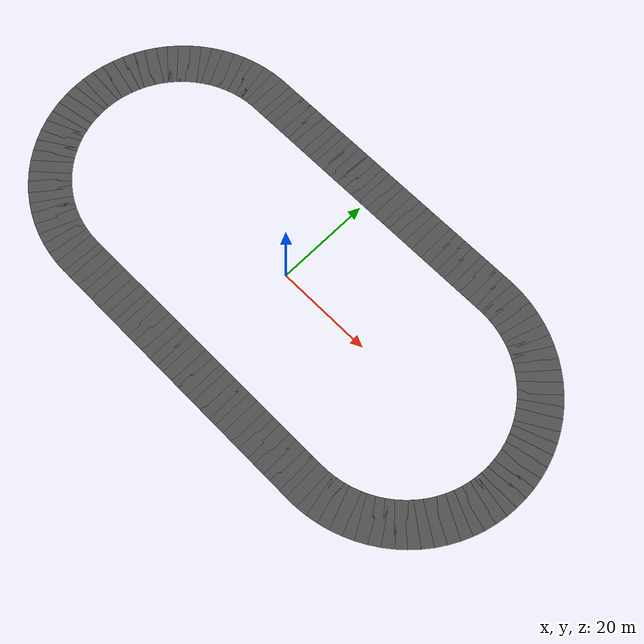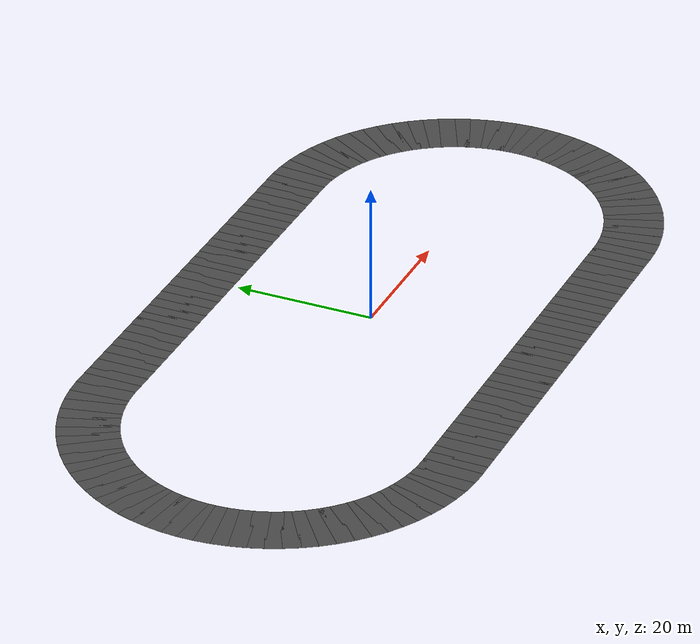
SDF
<sdf version="1.6">
 <world name="otoban">
  <model name="yol_yuzeyi">
   <static>1</static>
   <link name="link">
    <visual name="v0">
     <pose>-29.0033 -25.0000 0.0050 0 0 0.00000</pose>
     <cast_shadows>false</cast_shadows>
     <geometry><box><size>2.4022 8.5000 0.0100</size></box></geometry>
     <material>
      <script>
       <uri>model://asphalt_plane/materials/scripts</uri>
       <uri>model://asphalt_plane/materials/textures</uri>
       <name>vrc/asphalt</name>
      </script>
     </material>
    </visual>
    <visual name="v1">
     <pose>-27.0099 -25.0000 0.0050 0 0 0.00000</pose>
     <cast_shadows>false</cast_shadows>
     <geometry><box><size>2.4022 8.5000 0.0100</size></box></geometry>
     <material>
      <script>
       <uri>model://asphalt_plane/materials/scripts</uri>
       <uri>model://asphalt_plane/materials/textures</uri>
       <name>vrc/asphalt</name>
      </script>
     </material>
    </visual>
    <visual name="v2">
     <pose>-25.0166 -25.0000 0.0050 0 0 0.00000</pose>
     <cast_shadows>false</cast_shadows>
     <geometry><box><size>2.4022 8.5000 0.0100</size></box></geometry>
     <material>
      <script>
       <uri>model://asphalt_plane/materials/scripts</uri>
       <uri>model://asphalt_plane/materials/textures</uri>
       <name>vrc/asphalt</name>
      </script>
     </material>
    </visual>
    <visual name="v3">
     <pose>-23.0232 -25.0000 0.0050 0 0 0.00000</pose>
     <cast_shadows>false</cast_shadows>
     <geometry><box><size>2.4022 8.5000 0.0100</size></box></geometry>
     <material>
      <script>
       <uri>model://asphalt_plane/materials/scripts</uri>
       <uri>model://asphalt_plane/materials/textures</uri>
       <name>vrc/asphalt</name>
      </script>
     </material>
    </visual>
    <visual name="v4">
     <pose>-21.0298 -25.0000 0.0050 0 0 0.00000</pose>
     <cast_shadows>false</cast_shadows>
     <geometry><box><size>2.4022 8.5000 0.0100</size></box></geometry>
     <material>
      <script>
       <uri>model://asphalt_plane/materials/scripts</uri>
       <uri>model://asphalt_plane/materials/textures</uri>
       <name>vrc/asphalt</name>
      </script>
     </material>
    </visual>
    <visual name="v5">
     <pose>-19.0364 -25.0000 0.0050 0 0 0.00000</pose>
     <cast_shadows>false</cast_shadows>
     <geometry><box><size>2.4022 8.5000 0.0100</size></box></geometry>
     <material>
      <script>
       <uri>model://asphalt_plane/materials/scripts</uri>
       <uri>model://asphalt_plane/materials/textures</uri>
       <name>vrc/asphalt</name>
      </script>
     </material>
    </visual>
    <visual name="v6">
     <pose>-17.0430 -25.0000 0.0050 0 0 0.00000</pose>
     <cast_shadows>false</cast_shadows>
     <geometry><box><size>2.4022 8.5000 0.0100</size></box></geometry>
     <material>
      <script>
       <uri>model://asphalt_plane/materials/scripts</uri>
       <uri>model://asphalt_plane/materials/textures</uri>
       <name>vrc/asphalt</name>
      </script>
     </material>
    </visual>
    <visual name="v7">
     <pose>-15.0497 -25.0000 0.0050 0 0 0.00000</pose>
     <cast_shadows>false</cast_shadows>
     <geometry><box><size>2.4022 8.5000 0.0100</size></box></geometry>
     <material>
      <script>
       <uri>model://asphalt_plane/materials/scripts</uri>
       <uri>model://asphalt_plane/materials/textures</uri>
       <name>vrc/asphalt</name>
      </script>
     </material>
    </visual>
    <visual name="v8">
     <pose>-13.0563 -25.0000 0.0050 0 0 0.00000</pose>
     <cast_shadows>false</cast_shadows>
     <geometry><box><size>2.4022 8.5000 0.0100</size></box></geometry>
     <material>
      <script>
       <uri>model://asphalt_plane/materials/scripts</uri>
       <uri>model://asphalt_plane/materials/textures</uri>
       <name>vrc/asphalt</name>
      </script>
     </material>
    </visual>
    <visual name="v9">
     <pose>-11.0629 -25.0000 0.0050 0 0 0.00000</pose>
     <cast_shadows>false</cast_shadows>
     <geometry><box><size>2.4022 8.5000 0.0100</size></box></geometry>
     <material>
      <script>
       <uri>model://asphalt_plane/materials/scripts</uri>
       <uri>model://asphalt_plane/materials/textures</uri>
       <name>vrc/asphalt</name>
      </script>
     </material>
    </visual>
    <visual name="v10">
     <pose>-9.0695 -25.0000 0.0050 0 0 0.00000</pose>
     <cast_shadows>false</cast_shadows>
     <geometry><box><size>2.4022 8.5000 0.0100</size></box></geometry>
     <material>
      <script>
       <uri>model://asphalt_plane/materials/scripts</uri>
       <uri>model://asphalt_plane/materials/textures</uri>
       <name>vrc/asphalt</name>
      </script>
     </material>
    </visual>
    <visual name="v11">
     <pose>-7.0761 -25.0000 0.0050 0 0 0.00000</pose>
     <cast_shadows>false</cast_shadows>
     <geometry><box><size>2.4022 8.5000 0.0100</size></box></geometry>
     <material>
      <script>
       <uri>model://asphalt_plane/materials/scripts</uri>
       <uri>model://asphalt_plane/materials/textures</uri>
       <name>vrc/asphalt</name>
      </script>
     </material>
    </visual>
    <visual name="v12">
     <pose>-5.0828 -25.0000 0.0050 0 0 0.00000</pose>
     <cast_shadows>false</cast_shadows>
     <geometry><box><size>2.4022 8.5000 0.0100</size></box></geometry>
     <material>
      <script>
       <uri>model://asphalt_plane/materials/scripts</uri>
       <uri>model://asphalt_plane/materials/textures</uri>
       <name>vrc/asphalt</name>
      </script>
     </material>
    </visual>
    <visual name="v13">
     <pose>-3.0894 -25.0000 0.0050 0 0 0.00000</pose>
     <cast_shadows>false</cast_shadows>
     <geometry><box><size>2.4022 8.5000 0.0100</size></box></geometry>
     <material>
      <script>
       <uri>model://asphalt_plane/materials/scripts</uri>
       <uri>model://asphalt_plane/materials/textures</uri>
       <name>vrc/asphalt</name>
      </script>
     </material>
    </visual>
    <visual name="v14">
     <pose>-1.0960 -25.0000 0.0050 0 0 0.00000</pose>
     <cast_shadows>false</cast_shadows>
     <geometry><box><size>2.4022 8.5000 0.0100</size></box></geometry>
     <material>
      <script>
       <uri>model://asphalt_plane/materials/scripts</uri>
       <uri>model://asphalt_plane/materials/textures</uri>
       <name>vrc/asphalt</name>
      </script>
     </material>
    </visual>
    <visual name="v15">
     <pose>0.8974 -25.0000 0.0050 0 0 0.00000</pose>
     <cast_shadows>false</cast_shadows>
     <geometry><box><size>2.4022 8.5000 0.0100</size></box></geometry>
     <material>
      <script>
       <uri>model://asphalt_plane/materials/scripts</uri>
       <uri>model://asphalt_plane/materials/textures</uri>
       <name>vrc/asphalt</name>
      </script>
     </material>
    </visual>
    <visual name="v16">
     <pose>2.8907 -25.0000 0.0050 0 0 0.00000</pose>
     <cast_shadows>false</cast_shadows>
     <geometry><box><size>2.4022 8.5000 0.0100</size></box></geometry>
     <material>
      <script>
       <uri>model://asphalt_plane/materials/scripts</uri>
       <uri>model://asphalt_plane/materials/textures</uri>
       <name>vrc/asphalt</name>
      </script>
     </material>
    </visual>
    <visual name="v17">
     <pose>4.8841 -25.0000 0.0050 0 0 0.00000</pose>
     <cast_shadows>false</cast_shadows>
     <geometry><box><size>2.4022 8.5000 0.0100</size></box></geometry>
     <material>
      <script>
       <uri>model://asphalt_plane/materials/scripts</uri>
       <uri>model://asphalt_plane/materials/textures</uri>
       <name>vrc/asphalt</name>
      </script>
     </material>
    </visual>
    <visual name="v18">
     <pose>6.8775 -25.0000 0.0050 0 0 0.00000</pose>
     <cast_shadows>false</cast_shadows>
     <geometry><box><size>2.4022 8.5000 0.0100</size></box></geometry>
     <material>
      <script>
       <uri>model://asphalt_plane/materials/scripts</uri>
       <uri>model://asphalt_plane/materials/textures</uri>
       <name>vrc/asphalt</name>
      </script>
     </material>
    </visual>
    <visual name="v19">
     <pose>8.8709 -25.0000 0.0050 0 0 0.00000</pose>
     <cast_shadows>false</cast_shadows>
     <geometry><box><size>2.4022 8.5000 0.0100</size></box></geometry>
     <material>
      <script>
       <uri>model://asphalt_plane/materials/scripts</uri>
       <uri>model://asphalt_plane/materials/textures</uri>
       <name>vrc/asphalt</name>
      </script>
     </material>
    </visual>
    <visual name="v20">
     <pose>10.8643 -25.0000 0.0050 0 0 0.00000</pose>
     <cast_shadows>false</cast_shadows>
     <geometry><box><size>2.4022 8.5000 0.0100</size></box></geometry>
     <material>
      <script>
       <uri>model://asphalt_plane/materials/scripts</uri>
       <uri>model://asphalt_plane/materials/textures</uri>
       <name>vrc/asphalt</name>
      </script>
     </material>
    </visual>
    <visual name="v21">
     <pose>12.8576 -25.0000 0.0050 0 0 0.00000</pose>
     <cast_shadows>false</cast_shadows>
     <geometry><box><size>2.4022 8.5000 0.0100</size></box></geometry>
     <material>
      <script>
       <uri>model://asphalt_plane/materials/scripts</uri>
       <uri>model://asphalt_plane/materials/textures</uri>
       <name>vrc/asphalt</name>
      </script>
     </material>
    </visual>
    <visual name="v22">
     <pose>14.8510 -25.0000 0.0050 0 0 0.00000</pose>
     <cast_shadows>false</cast_shadows>
     <geometry><box><size>2.4022 8.5000 0.0100</size></box></geometry>
     <material>
      <script>
       <uri>model://asphalt_plane/materials/scripts</uri>
       <uri>model://asphalt_plane/materials/textures</uri>
       <name>vrc/asphalt</name>
      </script>
     </material>
    </visual>
    <visual name="v23">
     <pose>16.8444 -25.0000 0.0050 0 0 0.00000</pose>
     <cast_shadows>false</cast_shadows>
     <geometry><box><size>2.4022 8.5000 0.0100</size></box></geometry>
     <material>
      <script>
       <uri>model://asphalt_plane/materials/scripts</uri>
       <uri>model://asphalt_plane/materials/textures</uri>
       <name>vrc/asphalt</name>
      </script>
     </material>
    </visual>
    <visual name="v24">
     <pose>18.8378 -25.0000 0.0050 0 0 0.00000</pose>
     <cast_shadows>false</cast_shadows>
     <geometry><box><size>2.4022 8.5000 0.0100</size></box></geometry>
     <material>
      <script>
       <uri>model://asphalt_plane/materials/scripts</uri>
       <uri>model://asphalt_plane/materials/textures</uri>
       <name>vrc/asphalt</name>
      </script>
     </material>
    </visual>
    <visual name="v25">
     <pose>20.8312 -25.0000 0.0050 0 0 0.00000</pose>
     <cast_shadows>false</cast_shadows>
     <geometry><box><size>2.4022 8.5000 0.0100</size></box></geometry>
     <material>
      <script>
       <uri>model://asphalt_plane/materials/scripts</uri>
       <uri>model://asphalt_plane/materials/textures</uri>
       <name>vrc/asphalt</name>
      </script>
     </material>
    </visual>
    <visual name="v26">
     <pose>22.8245 -25.0000 0.0050 0 0 0.00000</pose>
     <cast_shadows>false</cast_shadows>
     <geometry><box><size>2.4022 8.5000 0.0100</size></box></geometry>
     <material>
      <script>
       <uri>model://asphalt_plane/materials/scripts</uri>
       <uri>model://asphalt_plane/materials/textures</uri>
       <name>vrc/asphalt</name>
      </script>
     </material>
    </visual>
    <visual name="v27">
     <pose>24.8179 -25.0000 0.0050 0 0 0.00000</pose>
     <cast_shadows>false</cast_shadows>
     <geometry><box><size>2.4022 8.5000 0.0100</size></box></geometry>
     <material>
      <script>
       <uri>model://asphalt_plane/materials/scripts</uri>
       <uri>model://asphalt_plane/materials/textures</uri>
       <name>vrc/asphalt</name>
      </script>
     </material>
    </visual>
    <visual name="v28">
     <pose>26.8113 -25.0000 0.0050 0 0 0.00000</pose>
     <cast_shadows>false</cast_shadows>
     <geometry><box><size>2.4022 8.5000 0.0100</size></box></geometry>
     <material>
      <script>
       <uri>model://asphalt_plane/materials/scripts</uri>
       <uri>model://asphalt_plane/materials/textures</uri>
       <name>vrc/asphalt</name>
      </script>
     </material>
    </visual>
    <visual name="v29">
     <pose>28.8047 -25.0000 0.0050 0 0 0.00000</pose>
     <cast_shadows>false</cast_shadows>
     <geometry><box><size>2.4022 8.5000 0.0100</size></box></geometry>
     <material>
      <script>
       <uri>model://asphalt_plane/materials/scripts</uri>
       <uri>model://asphalt_plane/materials/textures</uri>
       <name>vrc/asphalt</name>
      </script>
     </material>
    </visual>
    <visual name="v30">
     <pose>30.7979 -24.9873 0.0050 0 0 0.03192</pose>
     <cast_shadows>false</cast_shadows>
     <geometry><box><size>2.4022 8.5000 0.0100</size></box></geometry>
     <material>
      <script>
       <uri>model://asphalt_plane/materials/scripts</uri>
       <uri>model://asphalt_plane/materials/textures</uri>
       <name>vrc/asphalt</name>
      </script>
     </material>
    </visual>
    <visual name="v31">
     <pose>32.7856 -24.8443 0.0050 0 0 0.11166</pose>
     <cast_shadows>false</cast_shadows>
     <geometry><box><size>2.4022 8.5000 0.0100</size></box></geometry>
     <material>
      <script>
       <uri>model://asphalt_plane/materials/scripts</uri>
       <uri>model://asphalt_plane/materials/textures</uri>
       <name>vrc/asphalt</name>
      </script>
     </material>
    </visual>
    <visual name="v32">
     <pose>34.7556 -24.5435 0.0050 0 0 0.19139</pose>
     <cast_shadows>false</cast_shadows>
     <geometry><box><size>2.4022 8.5000 0.0100</size></box></geometry>
     <material>
      <script>
       <uri>model://asphalt_plane/materials/scripts</uri>
       <uri>model://asphalt_plane/materials/textures</uri>
       <name>vrc/asphalt</name>
      </script>
     </material>
    </visual>
    <visual name="v33">
     <pose>36.6954 -24.0867 0.0050 0 0 0.27113</pose>
     <cast_shadows>false</cast_shadows>
     <geometry><box><size>2.4022 8.5000 0.0100</size></box></geometry>
     <material>
      <script>
       <uri>model://asphalt_plane/materials/scripts</uri>
       <uri>model://asphalt_plane/materials/textures</uri>
       <name>vrc/asphalt</name>
      </script>
     </material>
    </visual>
    <visual name="v34">
     <pose>38.5927 -23.4769 0.0050 0 0 0.35086</pose>
     <cast_shadows>false</cast_shadows>
     <geometry><box><size>2.4022 8.5000 0.0100</size></box></geometry>
     <material>
      <script>
       <uri>model://asphalt_plane/materials/scripts</uri>
       <uri>model://asphalt_plane/materials/textures</uri>
       <name>vrc/asphalt</name>
      </script>
     </material>
    </visual>
    <visual name="v35">
     <pose>40.4354 -22.7179 0.0050 0 0 0.43060</pose>
     <cast_shadows>false</cast_shadows>
     <geometry><box><size>2.4022 8.5000 0.0100</size></box></geometry>
     <material>
      <script>
       <uri>model://asphalt_plane/materials/scripts</uri>
       <uri>model://asphalt_plane/materials/textures</uri>
       <name>vrc/asphalt</name>
      </script>
     </material>
    </visual>
    <visual name="v36">
     <pose>42.2117 -21.8145 0.0050 0 0 0.51033</pose>
     <cast_shadows>false</cast_shadows>
     <geometry><box><size>2.4022 8.5000 0.0100</size></box></geometry>
     <material>
      <script>
       <uri>model://asphalt_plane/materials/scripts</uri>
       <uri>model://asphalt_plane/materials/textures</uri>
       <name>vrc/asphalt</name>
      </script>
     </material>
    </visual>
    <visual name="v37">
     <pose>43.9104 -20.7726 0.0050 0 0 0.59007</pose>
     <cast_shadows>false</cast_shadows>
     <geometry><box><size>2.4022 8.5000 0.0100</size></box></geometry>
     <material>
      <script>
       <uri>model://asphalt_plane/materials/scripts</uri>
       <uri>model://asphalt_plane/materials/textures</uri>
       <name>vrc/asphalt</name>
      </script>
     </material>
    </visual>
    <visual name="v38">
     <pose>45.5208 -19.5986 0.0050 0 0 0.66980</pose>
     <cast_shadows>false</cast_shadows>
     <geometry><box><size>2.4022 8.5000 0.0100</size></box></geometry>
     <material>
      <script>
       <uri>model://asphalt_plane/materials/scripts</uri>
       <uri>model://asphalt_plane/materials/textures</uri>
       <name>vrc/asphalt</name>
      </script>
     </material>
    </visual>
    <visual name="v39">
     <pose>47.0325 -18.3001 0.0050 0 0 0.74954</pose>
     <cast_shadows>false</cast_shadows>
     <geometry><box><size>2.4022 8.5000 0.0100</size></box></geometry>
     <material>
      <script>
       <uri>model://asphalt_plane/materials/scripts</uri>
       <uri>model://asphalt_plane/materials/textures</uri>
       <name>vrc/asphalt</name>
      </script>
     </material>
    </visual>
    <visual name="v40">
     <pose>48.4360 -16.8853 0.0050 0 0 0.82927</pose>
     <cast_shadows>false</cast_shadows>
     <geometry><box><size>2.4022 8.5000 0.0100</size></box></geometry>
     <material>
      <script>
       <uri>model://asphalt_plane/materials/scripts</uri>
       <uri>model://asphalt_plane/materials/textures</uri>
       <name>vrc/asphalt</name>
      </script>
     </material>
    </visual>
    <visual name="v41">
     <pose>49.7224 -15.3632 0.0050 0 0 0.90901</pose>
     <cast_shadows>false</cast_shadows>
     <geometry><box><size>2.4022 8.5000 0.0100</size></box></geometry>
     <material>
      <script>
       <uri>model://asphalt_plane/materials/scripts</uri>
       <uri>model://asphalt_plane/materials/textures</uri>
       <name>vrc/asphalt</name>
      </script>
     </material>
    </visual>
    <visual name="v42">
     <pose>50.8834 -13.7435 0.0050 0 0 0.98874</pose>
     <cast_shadows>false</cast_shadows>
     <geometry><box><size>2.4022 8.5000 0.0100</size></box></geometry>
     <material>
      <script>
       <uri>model://asphalt_plane/materials/scripts</uri>
       <uri>model://asphalt_plane/materials/textures</uri>
       <name>vrc/asphalt</name>
      </script>
     </material>
    </visual>
    <visual name="v43">
     <pose>51.9117 -12.0365 0.0050 0 0 1.06848</pose>
     <cast_shadows>false</cast_shadows>
     <geometry><box><size>2.4022 8.5000 0.0100</size></box></geometry>
     <material>
      <script>
       <uri>model://asphalt_plane/materials/scripts</uri>
       <uri>model://asphalt_plane/materials/textures</uri>
       <name>vrc/asphalt</name>
      </script>
     </material>
    </visual>
    <visual name="v44">
     <pose>52.8008 -10.2529 0.0050 0 0 1.14821</pose>
     <cast_shadows>false</cast_shadows>
     <geometry><box><size>2.4022 8.5000 0.0100</size></box></geometry>
     <material>
      <script>
       <uri>model://asphalt_plane/materials/scripts</uri>
       <uri>model://asphalt_plane/materials/textures</uri>
       <name>vrc/asphalt</name>
      </script>
     </material>
    </visual>
    <visual name="v45">
     <pose>53.5450 -8.4042 0.0050 0 0 1.22795</pose>
     <cast_shadows>false</cast_shadows>
     <geometry><box><size>2.4022 8.5000 0.0100</size></box></geometry>
     <material>
      <script>
       <uri>model://asphalt_plane/materials/scripts</uri>
       <uri>model://asphalt_plane/materials/textures</uri>
       <name>vrc/asphalt</name>
      </script>
     </material>
    </visual>
    <visual name="v46">
     <pose>54.1396 -6.5022 0.0050 0 0 1.30768</pose>
     <cast_shadows>false</cast_shadows>
     <geometry><box><size>2.4022 8.5000 0.0100</size></box></geometry>
     <material>
      <script>
       <uri>model://asphalt_plane/materials/scripts</uri>
       <uri>model://asphalt_plane/materials/textures</uri>
       <name>vrc/asphalt</name>
      </script>
     </material>
    </visual>
    <visual name="v47">
     <pose>54.5808 -4.5588 0.0050 0 0 1.38742</pose>
     <cast_shadows>false</cast_shadows>
     <geometry><box><size>2.4022 8.5000 0.0100</size></box></geometry>
     <material>
      <script>
       <uri>model://asphalt_plane/materials/scripts</uri>
       <uri>model://asphalt_plane/materials/textures</uri>
       <name>vrc/asphalt</name>
      </script>
     </material>
    </visual>
    <visual name="v48">
     <pose>54.8659 -2.5864 0.0050 0 0 1.46715</pose>
     <cast_shadows>false</cast_shadows>
     <geometry><box><size>2.4022 8.5000 0.0100</size></box></geometry>
     <material>
      <script>
       <uri>model://asphalt_plane/materials/scripts</uri>
       <uri>model://asphalt_plane/materials/textures</uri>
       <name>vrc/asphalt</name>
      </script>
     </material>
    </visual>
    <visual name="v49">
     <pose>54.9929 -0.5976 0.0050 0 0 1.54689</pose>
     <cast_shadows>false</cast_shadows>
     <geometry><box><size>2.4022 8.5000 0.0100</size></box></geometry>
     <material>
      <script>
       <uri>model://asphalt_plane/materials/scripts</uri>
       <uri>model://asphalt_plane/materials/textures</uri>
       <name>vrc/asphalt</name>
      </script>
     </material>
    </visual>
    <visual name="v50">
     <pose>54.9610 1.3950 0.0050 0 0 1.62662</pose>
     <cast_shadows>false</cast_shadows>
     <geometry><box><size>2.4022 8.5000 0.0100</size></box></geometry>
     <material>
      <script>
       <uri>model://asphalt_plane/materials/scripts</uri>
       <uri>model://asphalt_plane/materials/textures</uri>
       <name>vrc/asphalt</name>
      </script>
     </material>
    </visual>
    <visual name="v51">
     <pose>54.7706 3.3787 0.0050 0 0 1.70636</pose>
     <cast_shadows>false</cast_shadows>
     <geometry><box><size>2.4022 8.5000 0.0100</size></box></geometry>
     <material>
      <script>
       <uri>model://asphalt_plane/materials/scripts</uri>
       <uri>model://asphalt_plane/materials/textures</uri>
       <name>vrc/asphalt</name>
      </script>
     </material>
    </visual>
    <visual name="v52">
     <pose>54.4228 5.3410 0.0050 0 0 1.78610</pose>
     <cast_shadows>false</cast_shadows>
     <geometry><box><size>2.4022 8.5000 0.0100</size></box></geometry>
     <material>
      <script>
       <uri>model://asphalt_plane/materials/scripts</uri>
       <uri>model://asphalt_plane/materials/textures</uri>
       <name>vrc/asphalt</name>
      </script>
     </material>
    </visual>
    <visual name="v53">
     <pose>53.9198 7.2693 0.0050 0 0 1.86583</pose>
     <cast_shadows>false</cast_shadows>
     <geometry><box><size>2.4022 8.5000 0.0100</size></box></geometry>
     <material>
      <script>
       <uri>model://asphalt_plane/materials/scripts</uri>
       <uri>model://asphalt_plane/materials/textures</uri>
       <name>vrc/asphalt</name>
      </script>
     </material>
    </visual>
    <visual name="v54">
     <pose>53.2648 9.1514 0.0050 0 0 1.94557</pose>
     <cast_shadows>false</cast_shadows>
     <geometry><box><size>2.4022 8.5000 0.0100</size></box></geometry>
     <material>
      <script>
       <uri>model://asphalt_plane/materials/scripts</uri>
       <uri>model://asphalt_plane/materials/textures</uri>
       <name>vrc/asphalt</name>
      </script>
     </material>
    </visual>
    <visual name="v55">
     <pose>52.4620 10.9754 0.0050 0 0 2.02530</pose>
     <cast_shadows>false</cast_shadows>
     <geometry><box><size>2.4022 8.5000 0.0100</size></box></geometry>
     <material>
      <script>
       <uri>model://asphalt_plane/materials/scripts</uri>
       <uri>model://asphalt_plane/materials/textures</uri>
       <name>vrc/asphalt</name>
      </script>
     </material>
    </visual>
    <visual name="v56">
     <pose>51.5164 12.7297 0.0050 0 0 2.10504</pose>
     <cast_shadows>false</cast_shadows>
     <geometry><box><size>2.4022 8.5000 0.0100</size></box></geometry>
     <material>
      <script>
       <uri>model://asphalt_plane/materials/scripts</uri>
       <uri>model://asphalt_plane/materials/textures</uri>
       <name>vrc/asphalt</name>
      </script>
     </material>
    </visual>
    <visual name="v57">
     <pose>50.4341 14.4030 0.0050 0 0 2.18477</pose>
     <cast_shadows>false</cast_shadows>
     <geometry><box><size>2.4022 8.5000 0.0100</size></box></geometry>
     <material>
      <script>
       <uri>model://asphalt_plane/materials/scripts</uri>
       <uri>model://asphalt_plane/materials/textures</uri>
       <name>vrc/asphalt</name>
      </script>
     </material>
    </visual>
    <visual name="v58">
     <pose>49.2220 15.9848 0.0050 0 0 2.26451</pose>
     <cast_shadows>false</cast_shadows>
     <geometry><box><size>2.4022 8.5000 0.0100</size></box></geometry>
     <material>
      <script>
       <uri>model://asphalt_plane/materials/scripts</uri>
       <uri>model://asphalt_plane/materials/textures</uri>
       <name>vrc/asphalt</name>
      </script>
     </material>
    </visual>
    <visual name="v59">
     <pose>47.8877 17.4651 0.0050 0 0 2.34424</pose>
     <cast_shadows>false</cast_shadows>
     <geometry><box><size>2.4022 8.5000 0.0100</size></box></geometry>
     <material>
      <script>
       <uri>model://asphalt_plane/materials/scripts</uri>
       <uri>model://asphalt_plane/materials/textures</uri>
       <name>vrc/asphalt</name>
      </script>
     </material>
    </visual>
    <visual name="v60">
     <pose>46.4398 18.8344 0.0050 0 0 2.42398</pose>
     <cast_shadows>false</cast_shadows>
     <geometry><box><size>2.4022 8.5000 0.0100</size></box></geometry>
     <material>
      <script>
       <uri>model://asphalt_plane/materials/scripts</uri>
       <uri>model://asphalt_plane/materials/textures</uri>
       <name>vrc/asphalt</name>
      </script>
     </material>
    </visual>
    <visual name="v61">
     <pose>44.8874 20.0840 0.0050 0 0 2.50371</pose>
     <cast_shadows>false</cast_shadows>
     <geometry><box><size>2.4022 8.5000 0.0100</size></box></geometry>
     <material>
      <script>
       <uri>model://asphalt_plane/materials/scripts</uri>
       <uri>model://asphalt_plane/materials/textures</uri>
       <name>vrc/asphalt</name>
      </script>
     </material>
    </visual>
    <visual name="v62">
     <pose>43.2404 21.2060 0.0050 0 0 2.58345</pose>
     <cast_shadows>false</cast_shadows>
     <geometry><box><size>2.4022 8.5000 0.0100</size></box></geometry>
     <material>
      <script>
       <uri>model://asphalt_plane/materials/scripts</uri>
       <uri>model://asphalt_plane/materials/textures</uri>
       <name>vrc/asphalt</name>
      </script>
     </material>
    </visual>
    <visual name="v63">
     <pose>41.5092 22.1932 0.0050 0 0 2.66318</pose>
     <cast_shadows>false</cast_shadows>
     <geometry><box><size>2.4022 8.5000 0.0100</size></box></geometry>
     <material>
      <script>
       <uri>model://asphalt_plane/materials/scripts</uri>
       <uri>model://asphalt_plane/materials/textures</uri>
       <name>vrc/asphalt</name>
      </script>
     </material>
    </visual>
    <visual name="v64">
     <pose>39.7050 23.0394 0.0050 0 0 2.74292</pose>
     <cast_shadows>false</cast_shadows>
     <geometry><box><size>2.4022 8.5000 0.0100</size></box></geometry>
     <material>
      <script>
       <uri>model://asphalt_plane/materials/scripts</uri>
       <uri>model://asphalt_plane/materials/textures</uri>
       <name>vrc/asphalt</name>
      </script>
     </material>
    </visual>
    <visual name="v65">
     <pose>37.8390 23.7392 0.0050 0 0 2.82265</pose>
     <cast_shadows>false</cast_shadows>
     <geometry><box><size>2.4022 8.5000 0.0100</size></box></geometry>
     <material>
      <script>
       <uri>model://asphalt_plane/materials/scripts</uri>
       <uri>model://asphalt_plane/materials/textures</uri>
       <name>vrc/asphalt</name>
      </script>
     </material>
    </visual>
    <visual name="v66">
     <pose>35.9233 24.2882 0.0050 0 0 2.90239</pose>
     <cast_shadows>false</cast_shadows>
     <geometry><box><size>2.4022 8.5000 0.0100</size></box></geometry>
     <material>
      <script>
       <uri>model://asphalt_plane/materials/scripts</uri>
       <uri>model://asphalt_plane/materials/textures</uri>
       <name>vrc/asphalt</name>
      </script>
     </material>
    </visual>
    <visual name="v67">
     <pose>33.9699 24.6828 0.0050 0 0 2.98212</pose>
     <cast_shadows>false</cast_shadows>
     <geometry><box><size>2.4022 8.5000 0.0100</size></box></geometry>
     <material>
      <script>
       <uri>model://asphalt_plane/materials/scripts</uri>
       <uri>model://asphalt_plane/materials/textures</uri>
       <name>vrc/asphalt</name>
      </script>
     </material>
    </visual>
    <visual name="v68">
     <pose>31.9913 24.9206 0.0050 0 0 3.06186</pose>
     <cast_shadows>false</cast_shadows>
     <geometry><box><size>2.4022 8.5000 0.0100</size></box></geometry>
     <material>
      <script>
       <uri>model://asphalt_plane/materials/scripts</uri>
       <uri>model://asphalt_plane/materials/textures</uri>
       <name>vrc/asphalt</name>
      </script>
     </material>
    </visual>
    <visual name="v69">
     <pose>30.0000 25.0000 0.0050 0 0 3.14159</pose>
     <cast_shadows>false</cast_shadows>
     <geometry><box><size>2.4022 8.5000 0.0100</size></box></geometry>
     <material>
      <script>
       <uri>model://asphalt_plane/materials/scripts</uri>
       <uri>model://asphalt_plane/materials/textures</uri>
       <name>vrc/asphalt</name>
      </script>
     </material>
    </visual>
    <visual name="v70">
     <pose>28.0066 25.0000 0.0050 0 0 3.14159</pose>
     <cast_shadows>false</cast_shadows>
     <geometry><box><size>2.4022 8.5000 0.0100</size></box></geometry>
     <material>
      <script>
       <uri>model://asphalt_plane/materials/scripts</uri>
       <uri>model://asphalt_plane/materials/textures</uri>
       <name>vrc/asphalt</name>
      </script>
     </material>
    </visual>
    <visual name="v71">
     <pose>26.0132 25.0000 0.0050 0 0 3.14159</pose>
     <cast_shadows>false</cast_shadows>
     <geometry><box><size>2.4022 8.5000 0.0100</size></box></geometry>
     <material>
      <script>
       <uri>model://asphalt_plane/materials/scripts</uri>
       <uri>model://asphalt_plane/materials/textures</uri>
       <name>vrc/asphalt</name>
      </script>
     </material>
    </visual>
    <visual name="v72">
     <pose>24.0199 25.0000 0.0050 0 0 3.14159</pose>
     <cast_shadows>false</cast_shadows>
     <geometry><box><size>2.4022 8.5000 0.0100</size></box></geometry>
     <material>
      <script>
       <uri>model://asphalt_plane/materials/scripts</uri>
       <uri>model://asphalt_plane/materials/textures</uri>
       <name>vrc/asphalt</name>
      </script>
     </material>
    </visual>
    <visual name="v73">
     <pose>22.0265 25.0000 0.0050 0 0 3.14159</pose>
     <cast_shadows>false</cast_shadows>
     <geometry><box><size>2.4022 8.5000 0.0100</size></box></geometry>
     <material>
      <script>
       <uri>model://asphalt_plane/materials/scripts</uri>
       <uri>model://asphalt_plane/materials/textures</uri>
       <name>vrc/asphalt</name>
      </script>
     </material>
    </visual>
    <visual name="v74">
     <pose>20.0331 25.0000 0.0050 0 0 3.14159</pose>
     <cast_shadows>false</cast_shadows>
     <geometry><box><size>2.4022 8.5000 0.0100</size></box></geometry>
     <material>
      <script>
       <uri>model://asphalt_plane/materials/scripts</uri>
       <uri>model://asphalt_plane/materials/textures</uri>
       <name>vrc/asphalt</name>
      </script>
     </material>
    </visual>
    <visual name="v75">
     <pose>18.0397 25.0000 0.0050 0 0 3.14159</pose>
     <cast_shadows>false</cast_shadows>
     <geometry><box><size>2.4022 8.5000 0.0100</size></box></geometry>
     <material>
      <script>
       <uri>model://asphalt_plane/materials/scripts</uri>
       <uri>model://asphalt_plane/materials/textures</uri>
       <name>vrc/asphalt</name>
      </script>
     </material>
    </visual>
    <visual name="v76">
     <pose>16.0463 25.0000 0.0050 0 0 3.14159</pose>
     <cast_shadows>false</cast_shadows>
     <geometry><box><size>2.4022 8.5000 0.0100</size></box></geometry>
     <material>
      <script>
       <uri>model://asphalt_plane/materials/scripts</uri>
       <uri>model://asphalt_plane/materials/textures</uri>
       <name>vrc/asphalt</name>
      </script>
     </material>
    </visual>
    <visual name="v77">
     <pose>14.0530 25.0000 0.0050 0 0 3.14159</pose>
     <cast_shadows>false</cast_shadows>
     <geometry><box><size>2.4022 8.5000 0.0100</size></box></geometry>
     <material>
      <script>
       <uri>model://asphalt_plane/materials/scripts</uri>
       <uri>model://asphalt_plane/materials/textures</uri>
       <name>vrc/asphalt</name>
      </script>
     </material>
    </visual>
    <visual name="v78">
     <pose>12.0596 25.0000 0.0050 0 0 3.14159</pose>
     <cast_shadows>false</cast_shadows>
     <geometry><box><size>2.4022 8.5000 0.0100</size></box></geometry>
     <material>
      <script>
       <uri>model://asphalt_plane/materials/scripts</uri>
       <uri>model://asphalt_plane/materials/textures</uri>
       <name>vrc/asphalt</name>
      </script>
     </material>
    </visual>
    <visual name="v79">
     <pose>10.0662 25.0000 0.0050 0 0 3.14159</pose>
     <cast_shadows>false</cast_shadows>
     <geometry><box><size>2.4022 8.5000 0.0100</size></box></geometry>
     <material>
      <script>
       <uri>model://asphalt_plane/materials/scripts</uri>
       <uri>model://asphalt_plane/materials/textures</uri>
       <name>vrc/asphalt</name>
      </script>
     </material>
    </visual>
    <visual name="v80">
     <pose>8.0728 25.0000 0.0050 0 0 3.14159</pose>
     <cast_shadows>false</cast_shadows>
     <geometry><box><size>2.4022 8.5000 0.0100</size></box></geometry>
     <material>
      <script>
       <uri>model://asphalt_plane/materials/scripts</uri>
       <uri>model://asphalt_plane/materials/textures</uri>
       <name>vrc/asphalt</name>
      </script>
     </material>
    </visual>
    <visual name="v81">
     <pose>6.0795 25.0000 0.0050 0 0 3.14159</pose>
     <cast_shadows>false</cast_shadows>
     <geometry><box><size>2.4022 8.5000 0.0100</size></box></geometry>
     <material>
      <script>
       <uri>model://asphalt_plane/materials/scripts</uri>
       <uri>model://asphalt_plane/materials/textures</uri>
       <name>vrc/asphalt</name>
      </script>
     </material>
    </visual>
    <visual name="v82">
     <pose>4.0861 25.0000 0.0050 0 0 3.14159</pose>
     <cast_shadows>false</cast_shadows>
     <geometry><box><size>2.4022 8.5000 0.0100</size></box></geometry>
     <material>
      <script>
       <uri>model://asphalt_plane/materials/scripts</uri>
       <uri>model://asphalt_plane/materials/textures</uri>
       <name>vrc/asphalt</name>
      </script>
     </material>
    </visual>
    <visual name="v83">
     <pose>2.0927 25.0000 0.0050 0 0 3.14159</pose>
     <cast_shadows>false</cast_shadows>
     <geometry><box><size>2.4022 8.5000 0.0100</size></box></geometry>
     <material>
      <script>
       <uri>model://asphalt_plane/materials/scripts</uri>
       <uri>model://asphalt_plane/materials/textures</uri>
       <name>vrc/asphalt</name>
      </script>
     </material>
    </visual>
    <visual name="v84">
     <pose>0.0993 25.0000 0.0050 0 0 3.14159</pose>
     <cast_shadows>false</cast_shadows>
     <geometry><box><size>2.4022 8.5000 0.0100</size></box></geometry>
     <material>
      <script>
       <uri>model://asphalt_plane/materials/scripts</uri>
       <uri>model://asphalt_plane/materials/textures</uri>
       <name>vrc/asphalt</name>
      </script>
     </material>
    </visual>
    <visual name="v85">
     <pose>-1.8941 25.0000 0.0050 0 0 3.14159</pose>
     <cast_shadows>false</cast_shadows>
     <geometry><box><size>2.4022 8.5000 0.0100</size></box></geometry>
     <material>
      <script>
       <uri>model://asphalt_plane/materials/scripts</uri>
       <uri>model://asphalt_plane/materials/textures</uri>
       <name>vrc/asphalt</name>
      </script>
     </material>
    </visual>
    <visual name="v86">
     <pose>-3.8874 25.0000 0.0050 0 0 3.14159</pose>
     <cast_shadows>false</cast_shadows>
     <geometry><box><size>2.4022 8.5000 0.0100</size></box></geometry>
     <material>
      <script>
       <uri>model://asphalt_plane/materials/scripts</uri>
       <uri>model://asphalt_plane/materials/textures</uri>
       <name>vrc/asphalt</name>
      </script>
     </material>
    </visual>
    <visual name="v87">
     <pose>-5.8808 25.0000 0.0050 0 0 3.14159</pose>
     <cast_shadows>false</cast_shadows>
     <geometry><box><size>2.4022 8.5000 0.0100</size></box></geometry>
     <material>
      <script>
       <uri>model://asphalt_plane/materials/scripts</uri>
       <uri>model://asphalt_plane/materials/textures</uri>
       <name>vrc/asphalt</name>
      </script>
     </material>
    </visual>
    <visual name="v88">
     <pose>-7.8742 25.0000 0.0050 0 0 3.14159</pose>
     <cast_shadows>false</cast_shadows>
     <geometry><box><size>2.4022 8.5000 0.0100</size></box></geometry>
     <material>
      <script>
       <uri>model://asphalt_plane/materials/scripts</uri>
       <uri>model://asphalt_plane/materials/textures</uri>
       <name>vrc/asphalt</name>
      </script>
     </material>
    </visual>
    <visual name="v89">
     <pose>-9.8676 25.0000 0.0050 0 0 3.14159</pose>
     <cast_shadows>false</cast_shadows>
     <geometry><box><size>2.4022 8.5000 0.0100</size></box></geometry>
     <material>
      <script>
       <uri>model://asphalt_plane/materials/scripts</uri>
       <uri>model://asphalt_plane/materials/textures</uri>
       <name>vrc/asphalt</name>
      </script>
     </material>
    </visual>
    <visual name="v90">
     <pose>-11.8610 25.0000 0.0050 0 0 3.14159</pose>
     <cast_shadows>false</cast_shadows>
     <geometry><box><size>2.4022 8.5000 0.0100</size></box></geometry>
     <material>
      <script>
       <uri>model://asphalt_plane/materials/scripts</uri>
       <uri>model://asphalt_plane/materials/textures</uri>
       <name>vrc/asphalt</name>
      </script>
     </material>
    </visual>
    <visual name="v91">
     <pose>-13.8543 25.0000 0.0050 0 0 3.14159</pose>
     <cast_shadows>false</cast_shadows>
     <geometry><box><size>2.4022 8.5000 0.0100</size></box></geometry>
     <material>
      <script>
       <uri>model://asphalt_plane/materials/scripts</uri>
       <uri>model://asphalt_plane/materials/textures</uri>
       <name>vrc/asphalt</name>
      </script>
     </material>
    </visual>
    <visual name="v92">
     <pose>-15.8477 25.0000 0.0050 0 0 3.14159</pose>
     <cast_shadows>false</cast_shadows>
     <geometry><box><size>2.4022 8.5000 0.0100</size></box></geometry>
     <material>
      <script>
       <uri>model://asphalt_plane/materials/scripts</uri>
       <uri>model://asphalt_plane/materials/textures</uri>
       <name>vrc/asphalt</name>
      </script>
     </material>
    </visual>
    <visual name="v93">
     <pose>-17.8411 25.0000 0.0050 0 0 3.14159</pose>
     <cast_shadows>false</cast_shadows>
     <geometry><box><size>2.4022 8.5000 0.0100</size></box></geometry>
     <material>
      <script>
       <uri>model://asphalt_plane/materials/scripts</uri>
       <uri>model://asphalt_plane/materials/textures</uri>
       <name>vrc/asphalt</name>
      </script>
     </material>
    </visual>
    <visual name="v94">
     <pose>-19.8345 25.0000 0.0050 0 0 3.14159</pose>
     <cast_shadows>false</cast_shadows>
     <geometry><box><size>2.4022 8.5000 0.0100</size></box></geometry>
     <material>
      <script>
       <uri>model://asphalt_plane/materials/scripts</uri>
       <uri>model://asphalt_plane/materials/textures</uri>
       <name>vrc/asphalt</name>
      </script>
     </material>
    </visual>
    <visual name="v95">
     <pose>-21.8278 25.0000 0.0050 0 0 3.14159</pose>
     <cast_shadows>false</cast_shadows>
     <geometry><box><size>2.4022 8.5000 0.0100</size></box></geometry>
     <material>
      <script>
       <uri>model://asphalt_plane/materials/scripts</uri>
       <uri>model://asphalt_plane/materials/textures</uri>
       <name>vrc/asphalt</name>
      </script>
     </material>
    </visual>
    <visual name="v96">
     <pose>-23.8212 25.0000 0.0050 0 0 3.14159</pose>
     <cast_shadows>false</cast_shadows>
     <geometry><box><size>2.4022 8.5000 0.0100</size></box></geometry>
     <material>
      <script>
       <uri>model://asphalt_plane/materials/scripts</uri>
       <uri>model://asphalt_plane/materials/textures</uri>
       <name>vrc/asphalt</name>
      </script>
     </material>
    </visual>
    <visual name="v97">
     <pose>-25.8146 25.0000 0.0050 0 0 3.14159</pose>
     <cast_shadows>false</cast_shadows>
     <geometry><box><size>2.4022 8.5000 0.0100</size></box></geometry>
     <material>
      <script>
       <uri>model://asphalt_plane/materials/scripts</uri>
       <uri>model://asphalt_plane/materials/textures</uri>
       <name>vrc/asphalt</name>
      </script>
     </material>
    </visual>
    <visual name="v98">
     <pose>-27.8080 25.0000 0.0050 0 0 3.14159</pose>
     <cast_shadows>false</cast_shadows>
     <geometry><box><size>2.4022 8.5000 0.0100</size></box></geometry>
     <material>
      <script>
       <uri>model://asphalt_plane/materials/scripts</uri>
       <uri>model://asphalt_plane/materials/textures</uri>
       <name>vrc/asphalt</name>
      </script>
     </material>
    </visual>
    <visual name="v99">
     <pose>-29.8014 25.0000 0.0050 0 0 3.14159</pose>
     <cast_shadows>false</cast_shadows>
     <geometry><box><size>2.4022 8.5000 0.0100</size></box></geometry>
     <material>
      <script>
       <uri>model://asphalt_plane/materials/scripts</uri>
       <uri>model://asphalt_plane/materials/textures</uri>
       <name>vrc/asphalt</name>
      </script>
     </material>
    </visual>
    <visual name="v100">
     <pose>-31.7932 24.9356 0.0050 0 0 3.21338</pose>
     <cast_shadows>false</cast_shadows>
     <geometry><box><size>2.4022 8.5000 0.0100</size></box></geometry>
     <material>
      <script>
       <uri>model://asphalt_plane/materials/scripts</uri>
       <uri>model://asphalt_plane/materials/textures</uri>
       <name>vrc/asphalt</name>
      </script>
     </material>
    </visual>
    <visual name="v101">
     <pose>-33.7736 24.7136 0.0050 0 0 3.29312</pose>
     <cast_shadows>false</cast_shadows>
     <geometry><box><size>2.4022 8.5000 0.0100</size></box></geometry>
     <material>
      <script>
       <uri>model://asphalt_plane/materials/scripts</uri>
       <uri>model://asphalt_plane/materials/textures</uri>
       <name>vrc/asphalt</name>
      </script>
     </material>
    </visual>
    <visual name="v102">
     <pose>-35.7301 24.3345 0.0050 0 0 3.37285</pose>
     <cast_shadows>false</cast_shadows>
     <geometry><box><size>2.4022 8.5000 0.0100</size></box></geometry>
     <material>
      <script>
       <uri>model://asphalt_plane/materials/scripts</uri>
       <uri>model://asphalt_plane/materials/textures</uri>
       <name>vrc/asphalt</name>
      </script>
     </material>
    </visual>
    <visual name="v103">
     <pose>-37.6502 23.8007 0.0050 0 0 3.45259</pose>
     <cast_shadows>false</cast_shadows>
     <geometry><box><size>2.4022 8.5000 0.0100</size></box></geometry>
     <material>
      <script>
       <uri>model://asphalt_plane/materials/scripts</uri>
       <uri>model://asphalt_plane/materials/textures</uri>
       <name>vrc/asphalt</name>
      </script>
     </material>
    </visual>
    <visual name="v104">
     <pose>-39.5216 23.1158 0.0050 0 0 3.53232</pose>
     <cast_shadows>false</cast_shadows>
     <geometry><box><size>2.4022 8.5000 0.0100</size></box></geometry>
     <material>
      <script>
       <uri>model://asphalt_plane/materials/scripts</uri>
       <uri>model://asphalt_plane/materials/textures</uri>
       <name>vrc/asphalt</name>
      </script>
     </material>
    </visual>
    <visual name="v105">
     <pose>-41.3325 22.2839 0.0050 0 0 3.61206</pose>
     <cast_shadows>false</cast_shadows>
     <geometry><box><size>2.4022 8.5000 0.0100</size></box></geometry>
     <material>
      <script>
       <uri>model://asphalt_plane/materials/scripts</uri>
       <uri>model://asphalt_plane/materials/textures</uri>
       <name>vrc/asphalt</name>
      </script>
     </material>
    </visual>
    <visual name="v106">
     <pose>-43.0715 21.3105 0.0050 0 0 3.69179</pose>
     <cast_shadows>false</cast_shadows>
     <geometry><box><size>2.4022 8.5000 0.0100</size></box></geometry>
     <material>
      <script>
       <uri>model://asphalt_plane/materials/scripts</uri>
       <uri>model://asphalt_plane/materials/textures</uri>
       <name>vrc/asphalt</name>
      </script>
     </material>
    </visual>
    <visual name="v107">
     <pose>-44.7273 20.2016 0.0050 0 0 3.77153</pose>
     <cast_shadows>false</cast_shadows>
     <geometry><box><size>2.4022 8.5000 0.0100</size></box></geometry>
     <material>
      <script>
       <uri>model://asphalt_plane/materials/scripts</uri>
       <uri>model://asphalt_plane/materials/textures</uri>
       <name>vrc/asphalt</name>
      </script>
     </material>
    </visual>
    <visual name="v108">
     <pose>-46.2896 18.9644 0.0050 0 0 3.85126</pose>
     <cast_shadows>false</cast_shadows>
     <geometry><box><size>2.4022 8.5000 0.0100</size></box></geometry>
     <material>
      <script>
       <uri>model://asphalt_plane/materials/scripts</uri>
       <uri>model://asphalt_plane/materials/textures</uri>
       <name>vrc/asphalt</name>
      </script>
     </material>
    </visual>
    <visual name="v109">
     <pose>-47.7484 17.6067 0.0050 0 0 3.93100</pose>
     <cast_shadows>false</cast_shadows>
     <geometry><box><size>2.4022 8.5000 0.0100</size></box></geometry>
     <material>
      <script>
       <uri>model://asphalt_plane/materials/scripts</uri>
       <uri>model://asphalt_plane/materials/textures</uri>
       <name>vrc/asphalt</name>
      </script>
     </material>
    </visual>
    <visual name="v110">
     <pose>-49.0944 16.1371 0.0050 0 0 4.01073</pose>
     <cast_shadows>false</cast_shadows>
     <geometry><box><size>2.4022 8.5000 0.0100</size></box></geometry>
     <material>
      <script>
       <uri>model://asphalt_plane/materials/scripts</uri>
       <uri>model://asphalt_plane/materials/textures</uri>
       <name>vrc/asphalt</name>
      </script>
     </material>
    </visual>
    <visual name="v111">
     <pose>-50.3190 14.5649 0.0050 0 0 4.09047</pose>
     <cast_shadows>false</cast_shadows>
     <geometry><box><size>2.4022 8.5000 0.0100</size></box></geometry>
     <material>
      <script>
       <uri>model://asphalt_plane/materials/scripts</uri>
       <uri>model://asphalt_plane/materials/textures</uri>
       <name>vrc/asphalt</name>
      </script>
     </material>
    </visual>
    <visual name="v112">
     <pose>-51.4146 12.9002 0.0050 0 0 4.17020</pose>
     <cast_shadows>false</cast_shadows>
     <geometry><box><size>2.4022 8.5000 0.0100</size></box></geometry>
     <material>
      <script>
       <uri>model://asphalt_plane/materials/scripts</uri>
       <uri>model://asphalt_plane/materials/textures</uri>
       <name>vrc/asphalt</name>
      </script>
     </material>
    </visual>
    <visual name="v113">
     <pose>-52.3741 11.1536 0.0050 0 0 4.24994</pose>
     <cast_shadows>false</cast_shadows>
     <geometry><box><size>2.4022 8.5000 0.0100</size></box></geometry>
     <material>
      <script>
       <uri>model://asphalt_plane/materials/scripts</uri>
       <uri>model://asphalt_plane/materials/textures</uri>
       <name>vrc/asphalt</name>
      </script>
     </material>
    </visual>
    <visual name="v114">
     <pose>-53.1914 9.3360 0.0050 0 0 4.32967</pose>
     <cast_shadows>false</cast_shadows>
     <geometry><box><size>2.4022 8.5000 0.0100</size></box></geometry>
     <material>
      <script>
       <uri>model://asphalt_plane/materials/scripts</uri>
       <uri>model://asphalt_plane/materials/textures</uri>
       <name>vrc/asphalt</name>
      </script>
     </material>
    </visual>
    <visual name="v115">
     <pose>-53.8613 7.4591 0.0050 0 0 4.40941</pose>
     <cast_shadows>false</cast_shadows>
     <geometry><box><size>2.4022 8.5000 0.0100</size></box></geometry>
     <material>
      <script>
       <uri>model://asphalt_plane/materials/scripts</uri>
       <uri>model://asphalt_plane/materials/textures</uri>
       <name>vrc/asphalt</name>
      </script>
     </material>
    </visual>
    <visual name="v116">
     <pose>-54.3796 5.5349 0.0050 0 0 4.48914</pose>
     <cast_shadows>false</cast_shadows>
     <geometry><box><size>2.4022 8.5000 0.0100</size></box></geometry>
     <material>
      <script>
       <uri>model://asphalt_plane/materials/scripts</uri>
       <uri>model://asphalt_plane/materials/textures</uri>
       <name>vrc/asphalt</name>
      </script>
     </material>
    </visual>
    <visual name="v117">
     <pose>-54.7430 3.5754 0.0050 0 0 4.56888</pose>
     <cast_shadows>false</cast_shadows>
     <geometry><box><size>2.4022 8.5000 0.0100</size></box></geometry>
     <material>
      <script>
       <uri>model://asphalt_plane/materials/scripts</uri>
       <uri>model://asphalt_plane/materials/textures</uri>
       <name>vrc/asphalt</name>
      </script>
     </material>
    </visual>
    <visual name="v118">
     <pose>-54.9492 1.5933 0.0050 0 0 4.64861</pose>
     <cast_shadows>false</cast_shadows>
     <geometry><box><size>2.4022 8.5000 0.0100</size></box></geometry>
     <material>
      <script>
       <uri>model://asphalt_plane/materials/scripts</uri>
       <uri>model://asphalt_plane/materials/textures</uri>
       <name>vrc/asphalt</name>
      </script>
     </material>
    </visual>
    <visual name="v119">
     <pose>-54.9968 -0.3990 0.0050 0 0 4.72835</pose>
     <cast_shadows>false</cast_shadows>
     <geometry><box><size>2.4022 8.5000 0.0100</size></box></geometry>
     <material>
      <script>
       <uri>model://asphalt_plane/materials/scripts</uri>
       <uri>model://asphalt_plane/materials/textures</uri>
       <name>vrc/asphalt</name>
      </script>
     </material>
    </visual>
    <visual name="v120">
     <pose>-54.8856 -2.3888 0.0050 0 0 4.80809</pose>
     <cast_shadows>false</cast_shadows>
     <geometry><box><size>2.4022 8.5000 0.0100</size></box></geometry>
     <material>
      <script>
       <uri>model://asphalt_plane/materials/scripts</uri>
       <uri>model://asphalt_plane/materials/textures</uri>
       <name>vrc/asphalt</name>
      </script>
     </material>
    </visual>
    <visual name="v121">
     <pose>-54.6163 -4.3633 0.0050 0 0 4.88782</pose>
     <cast_shadows>false</cast_shadows>
     <geometry><box><size>2.4022 8.5000 0.0100</size></box></geometry>
     <material>
      <script>
       <uri>model://asphalt_plane/materials/scripts</uri>
       <uri>model://asphalt_plane/materials/textures</uri>
       <name>vrc/asphalt</name>
      </script>
     </material>
    </visual>
    <visual name="v122">
     <pose>-54.1905 -6.3102 0.0050 0 0 4.96756</pose>
     <cast_shadows>false</cast_shadows>
     <geometry><box><size>2.4022 8.5000 0.0100</size></box></geometry>
     <material>
      <script>
       <uri>model://asphalt_plane/materials/scripts</uri>
       <uri>model://asphalt_plane/materials/textures</uri>
       <name>vrc/asphalt</name>
      </script>
     </material>
    </visual>
    <visual name="v123">
     <pose>-53.6111 -8.2169 0.0050 0 0 5.04729</pose>
     <cast_shadows>false</cast_shadows>
     <geometry><box><size>2.4022 8.5000 0.0100</size></box></geometry>
     <material>
      <script>
       <uri>model://asphalt_plane/materials/scripts</uri>
       <uri>model://asphalt_plane/materials/textures</uri>
       <name>vrc/asphalt</name>
      </script>
     </material>
    </visual>
    <visual name="v124">
     <pose>-52.8816 -10.0714 0.0050 0 0 5.12703</pose>
     <cast_shadows>false</cast_shadows>
     <geometry><box><size>2.4022 8.5000 0.0100</size></box></geometry>
     <material>
      <script>
       <uri>model://asphalt_plane/materials/scripts</uri>
       <uri>model://asphalt_plane/materials/textures</uri>
       <name>vrc/asphalt</name>
      </script>
     </material>
    </visual>
    <visual name="v125">
     <pose>-52.0067 -11.8620 0.0050 0 0 5.20676</pose>
     <cast_shadows>false</cast_shadows>
     <geometry><box><size>2.4022 8.5000 0.0100</size></box></geometry>
     <material>
      <script>
       <uri>model://asphalt_plane/materials/scripts</uri>
       <uri>model://asphalt_plane/materials/textures</uri>
       <name>vrc/asphalt</name>
      </script>
     </material>
    </visual>
    <visual name="v126">
     <pose>-50.9919 -13.5771 0.0050 0 0 5.28650</pose>
     <cast_shadows>false</cast_shadows>
     <geometry><box><size>2.4022 8.5000 0.0100</size></box></geometry>
     <material>
      <script>
       <uri>model://asphalt_plane/materials/scripts</uri>
       <uri>model://asphalt_plane/materials/textures</uri>
       <name>vrc/asphalt</name>
      </script>
     </material>
    </visual>
    <visual name="v127">
     <pose>-49.8438 -15.2060 0.0050 0 0 5.36623</pose>
     <cast_shadows>false</cast_shadows>
     <geometry><box><size>2.4022 8.5000 0.0100</size></box></geometry>
     <material>
      <script>
       <uri>model://asphalt_plane/materials/scripts</uri>
       <uri>model://asphalt_plane/materials/textures</uri>
       <name>vrc/asphalt</name>
      </script>
     </material>
    </visual>
    <visual name="v128">
     <pose>-48.5696 -16.7383 0.0050 0 0 5.44597</pose>
     <cast_shadows>false</cast_shadows>
     <geometry><box><size>2.4022 8.5000 0.0100</size></box></geometry>
     <material>
      <script>
       <uri>model://asphalt_plane/materials/scripts</uri>
       <uri>model://asphalt_plane/materials/textures</uri>
       <name>vrc/asphalt</name>
      </script>
     </material>
    </visual>
    <visual name="v129">
     <pose>-47.1774 -18.1642 0.0050 0 0 5.52570</pose>
     <cast_shadows>false</cast_shadows>
     <geometry><box><size>2.4022 8.5000 0.0100</size></box></geometry>
     <material>
      <script>
       <uri>model://asphalt_plane/materials/scripts</uri>
       <uri>model://asphalt_plane/materials/textures</uri>
       <name>vrc/asphalt</name>
      </script>
     </material>
    </visual>
    <visual name="v130">
     <pose>-45.6760 -19.4747 0.0050 0 0 5.60544</pose>
     <cast_shadows>false</cast_shadows>
     <geometry><box><size>2.4022 8.5000 0.0100</size></box></geometry>
     <material>
      <script>
       <uri>model://asphalt_plane/materials/scripts</uri>
       <uri>model://asphalt_plane/materials/textures</uri>
       <name>vrc/asphalt</name>
      </script>
     </material>
    </visual>
    <visual name="v131">
     <pose>-44.0750 -20.6614 0.0050 0 0 5.68517</pose>
     <cast_shadows>false</cast_shadows>
     <geometry><box><size>2.4022 8.5000 0.0100</size></box></geometry>
     <material>
      <script>
       <uri>model://asphalt_plane/materials/scripts</uri>
       <uri>model://asphalt_plane/materials/textures</uri>
       <name>vrc/asphalt</name>
      </script>
     </material>
    </visual>
    <visual name="v132">
     <pose>-42.3846 -21.7168 0.0050 0 0 5.76491</pose>
     <cast_shadows>false</cast_shadows>
     <geometry><box><size>2.4022 8.5000 0.0100</size></box></geometry>
     <material>
      <script>
       <uri>model://asphalt_plane/materials/scripts</uri>
       <uri>model://asphalt_plane/materials/textures</uri>
       <name>vrc/asphalt</name>
      </script>
     </material>
    </visual>
    <visual name="v133">
     <pose>-40.6155 -22.6343 0.0050 0 0 5.84464</pose>
     <cast_shadows>false</cast_shadows>
     <geometry><box><size>2.4022 8.5000 0.0100</size></box></geometry>
     <material>
      <script>
       <uri>model://asphalt_plane/materials/scripts</uri>
       <uri>model://asphalt_plane/materials/textures</uri>
       <name>vrc/asphalt</name>
      </script>
     </material>
    </visual>
    <visual name="v134">
     <pose>-38.7790 -23.4079 0.0050 0 0 5.92438</pose>
     <cast_shadows>false</cast_shadows>
     <geometry><box><size>2.4022 8.5000 0.0100</size></box></geometry>
     <material>
      <script>
       <uri>model://asphalt_plane/materials/scripts</uri>
       <uri>model://asphalt_plane/materials/textures</uri>
       <name>vrc/asphalt</name>
      </script>
     </material>
    </visual>
    <visual name="v135">
     <pose>-36.8866 -24.0328 0.0050 0 0 6.00411</pose>
     <cast_shadows>false</cast_shadows>
     <geometry><box><size>2.4022 8.5000 0.0100</size></box></geometry>
     <material>
      <script>
       <uri>model://asphalt_plane/materials/scripts</uri>
       <uri>model://asphalt_plane/materials/textures</uri>
       <name>vrc/asphalt</name>
      </script>
     </material>
    </visual>
    <visual name="v136">
     <pose>-34.9505 -24.5049 0.0050 0 0 6.08385</pose>
     <cast_shadows>false</cast_shadows>
     <geometry><box><size>2.4022 8.5000 0.0100</size></box></geometry>
     <material>
      <script>
       <uri>model://asphalt_plane/materials/scripts</uri>
       <uri>model://asphalt_plane/materials/textures</uri>
       <name>vrc/asphalt</name>
      </script>
     </material>
    </visual>
    <visual name="v137">
     <pose>-32.9829 -24.8214 0.0050 0 0 6.16358</pose>
     <cast_shadows>false</cast_shadows>
     <geometry><box><size>2.4022 8.5000 0.0100</size></box></geometry>
     <material>
      <script>
       <uri>model://asphalt_plane/materials/scripts</uri>
       <uri>model://asphalt_plane/materials/textures</uri>
       <name>vrc/asphalt</name>
      </script>
     </material>
    </visual>
    <visual name="v138">
     <pose>-30.9964 -24.9801 0.0050 0 0 6.24332</pose>
     <cast_shadows>false</cast_shadows>
     <geometry><box><size>2.4022 8.5000 0.0100</size></box></geometry>
     <material>
      <script>
       <uri>model://asphalt_plane/materials/scripts</uri>
       <uri>model://asphalt_plane/materials/textures</uri>
       <name>vrc/asphalt</name>
      </script>
     </material>
    </visual>
   </link>
  </model>
 </world>
</sdf>
